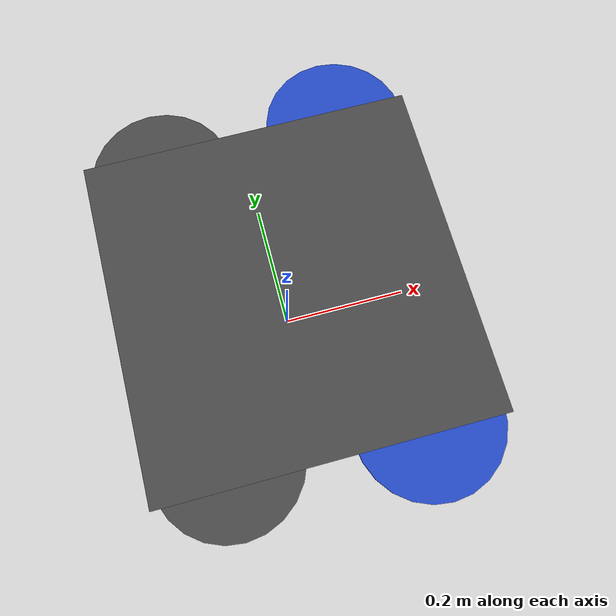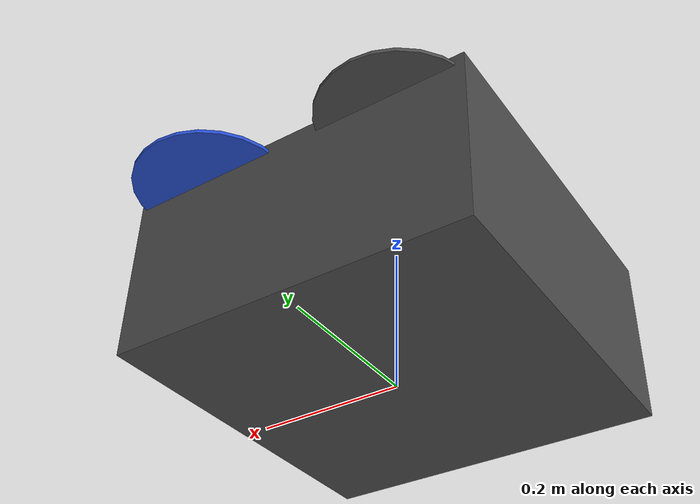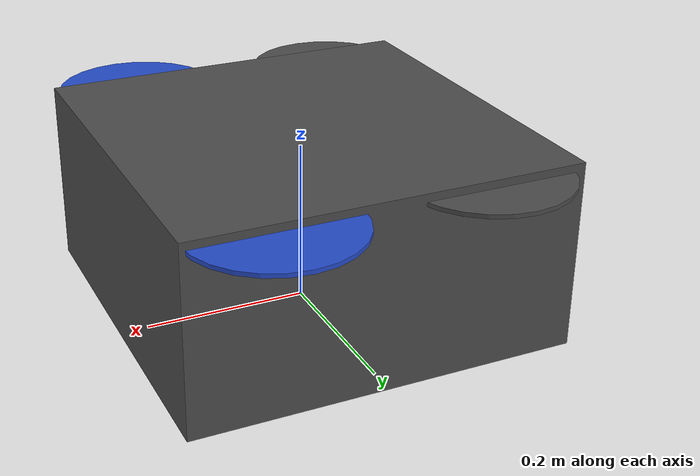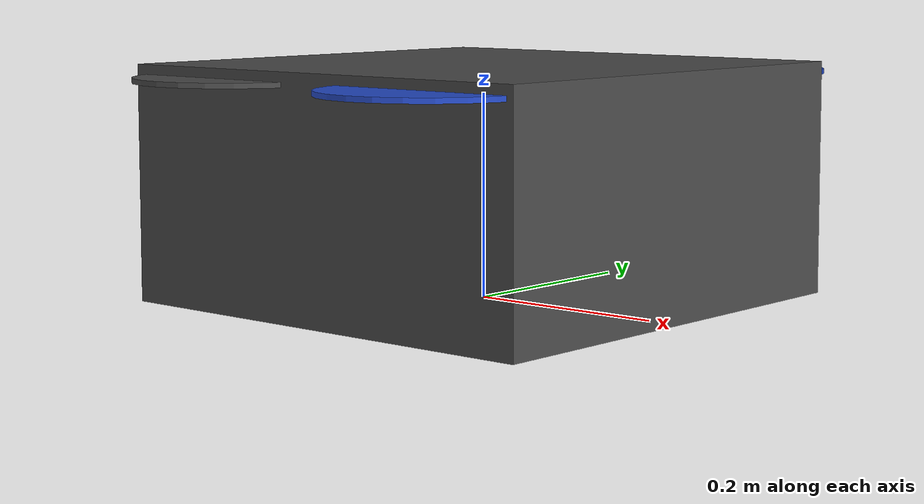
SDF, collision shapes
<?xml version='1.0'?>
<sdf version="1.6" >
  <model name="drone_with_depth_camera">
    <include>
      <uri>model://iris_base</uri>
    </include>

    <!-- testscript begin -->
    <link name="gimbal_small_2d_link">
      <pose>0 0 0.18 0 0 0</pose>

      <link name='base_link'>
        <inertial>
          <mass>0.2</mass>
          <inertia>
            <ixx>0.0001</ixx>
            <ixy>0</ixy>
            <ixz>0</ixz>
            <iyy>0.0001</iyy>
            <iyz>0</iyz>
            <izz>0.0001</izz>
          </inertia>
        </inertial>

        <visual name='base_main_viz'>
          <geometry>
            <mesh>
              <scale>0.001 0.001 0.001</scale>
              <uri>model://gimbal_small_2d/meshes/base_main.dae</uri>
            </mesh>
          </geometry>
          <material>
            <script>
              <uri>file://media/materials/scripts/gazebo.material</uri>
              <name>Gazebo/FlatBlack</name>
            </script>
          </material>
        </visual>

        <visual name='base_arm_viz'>
          <geometry>
            <mesh>
              <scale>0.001 0.001 0.001</scale>
              <uri>model://gimbal_small_2d/meshes/base_arm.dae</uri>
            </mesh>
          </geometry>
          <material>
            <script>
              <uri>file://media/materials/scripts/gazebo.material</uri>
              <name>Gazebo/FlatBlack</name>
            </script>
          </material>
        </visual>

        <collision name='base_col'>
          <pose>0.01 0.075 -0.025 0 0 0</pose>
          <geometry>
            <box>
              <size>0.1 0.05 0.15</size>
            </box>
          </geometry>
          <surface>
            <friction>
              <ode>
                <mu>1</mu>
                <mu2>1</mu2>
                <fdir1>0 0 0</fdir1>
                <slip1>0</slip1>
                <slip2>0</slip2>
              </ode>
            </friction>
          </surface>
        </collision>
      </link>

      <link name='tilt_link'>
        <inertial>
          <mass>0.01</mass>
          <inertia>
            <ixx>0.00001</ixx>
            <ixy>0</ixy>
            <ixz>0</ixz>
            <iyy>0.00001</iyy>
            <iyz>0</iyz>
            <izz>0.00001</izz>
          </inertia>
        </inertial>
        <visual name='tilt_viz'>
          <pose>0 0 -0.005 0 0 0</pose>
          <geometry>
            <mesh>
              <scale>0.001 0.001 0.001</scale>
              <uri>model://gimbal_small_2d/meshes/tilt.dae</uri>
            </mesh>
          </geometry>
          <material>
            <script>
              <uri>file://media/materials/scripts/gazebo.material</uri>
              <name>Gazebo/Grey</name>
            </script>
          </material>
        </visual>

        <collision name='tilt_col'>
          <pose>0 0 -0.005 0 0 0</pose>
          <geometry>
            <mesh>
              <scale>0.001 0.001 0.001</scale>
              <uri>model://gimbal_small_2d/meshes/tilt.dae</uri>
            </mesh>
          </geometry>
        </collision>

        <visual name='camera_viz'>
          <pose>0 0 0.02 0 0 0</pose>
          <geometry>
            <cylinder>
              <radius>0.025</radius>
              <length>0.050</length>
            </cylinder>
          </geometry>

          <material>
            <script>
              <uri>file://media/materials/scripts/gazebo.material</uri>
              <name>Gazebo/Grey</name>
            </script>
          </material>
        </visual>

        <collision name='camera_col'>
          <pose>0 0 0.02 0 0 0</pose>
          <geometry>
            <cylinder>
              <radius>0.025</radius>
              <length>0.050</length>
            </cylinder>
          </geometry>
        </collision>

        <sensor name="depth_camera" type="depth">
          <pose>0 0 0 -1.57 -1.57 0</pose>
          <update_rate>20</update_rate>
          <always_on>1</always_on>
          <visualize>true</visualize>
          <camera>
            <horizontal_fov>1.047198</horizontal_fov>
            <image>
              <width>640</width>
              <height>480</height>
              <format>R8G8B8</format>
            </image>
            <clip>
              <near>0.1</near>
              <far>20</far>
            </clip>
          </camera>
          <plugin name="depth_controller" filename="libgazebo_ros_openni_kinect.so">
            <baseline>0.2</baseline>
            <alwaysOn>true</alwaysOn>
            <updateRate>10.0</updateRate>
            <cameraName>depth_camera</cameraName>
            <imageTopicName>/camera/rgb/image_raw</imageTopicName>
            <cameraInfoTopicName>/depth_cameracamera/color/camera_info</cameraInfoTopicName>
            <depthImageTopicName>/depth_camera/depth/image_raw</depthImageTopicName>
            <depthImageInfoTopicName>/depth_camera/camera/depth/camera_info</depthImageInfoTopicName>
            <pointCloudTopicName>depth/points</pointCloudTopicName>
            <frameName>camera_link_optical</frameName>
            <pointCloudCutoff>0.4</pointCloudCutoff>
            <pointCloudCutoffMax>10.0</pointCloudCutoffMax>
            <distortionK1>0.0</distortionK1>
            <distortionK2>0.0</distortionK2>
            <distortionK3>0.0</distortionK3>
            <distortionT1>0.0</distortionT1>
            <distortionT2>0.0</distortionT2>
            <CxPrime>0</CxPrime>
            <Cx>0</Cx>
            <Cy>0</Cy>
            <focalLength>0.0</focalLength>
            <focalLength>0</focalLength>
            <hackBaseline>0</hackBaseline>
          </plugin>

        </sensor>
      </link>

      <joint name='tilt_joint' type='revolute'>
        <parent>base_link</parent>
        <child>tilt_link</child>

        <physics>
          <ode>
            <implicit_spring_damper>1</implicit_spring_damper>
          </ode>
        </physics>

        <axis>
          <xyz>1 0 0</xyz>
          <dynamics>
            <damping>0.5</damping>
          </dynamics>
          <use_parent_model_frame>1</use_parent_model_frame>
          <limit>
            <lower>-0.1</lower>
            <upper>3.14159265</upper>
            <effort>10</effort>
            <velocity>-1</velocity>
          </limit>
        </axis>
        <pose>0 0 0.02 0 0 0</pose>
      </joint>

      <plugin name="gimbal_small_2d" filename="libGimbalSmall2dPlugin.so">
        <joint>tilt_joint</joint>
      </plugin>
    </link>

    <!-- testscript end -->

 <!--  RGBD camera link   -->
  <joint name="iris_gimbal_mount" type="revolute">
      <parent>iris::base_link</parent>
      <child>gimbal_small_2d_link::base_link</child>
      <axis>
        <limit>
          <lower>0</lower>
          <upper>0</upper>
        </limit>
        <xyz>0 0 1</xyz>
        <use_parent_model_frame>true</use_parent_model_frame>
      </axis>
    </joint>

    <!-- plugins -->
    <plugin name="rotor_0_blade_1" filename="libLiftDragPlugin.so">
      <a0>0.3</a0>
      <alpha_stall>1.4</alpha_stall>
      <cla>4.2500</cla>
      <cda>0.10</cda>
      <cma>0.00</cma>
      <cla_stall>-0.025</cla_stall>
      <cda_stall>0.0</cda_stall>
      <cma_stall>0.0</cma_stall>
      <area>0.002</area>
      <air_density>1.2041</air_density>
      <cp>0.084 0 0</cp>
      <forward>0 1 0</forward>
      <upward>0 0 1</upward>
      <link_name>iris::rotor_0</link_name>
    </plugin>
    <plugin name="rotor_0_blade_2" filename="libLiftDragPlugin.so">
      <a0>0.3</a0>
      <alpha_stall>1.4</alpha_stall>
      <cla>4.2500</cla>
      <cda>0.10</cda>
      <cma>0.00</cma>
      <cla_stall>-0.025</cla_stall>
      <cda_stall>0.0</cda_stall>
      <cma_stall>0.0</cma_stall>
      <area>0.002</area>
      <air_density>1.2041</air_density>
      <cp>-0.084 0 0</cp>
      <forward>0 -1 0</forward>
      <upward>0 0 1</upward>
      <link_name>iris::rotor_0</link_name>
    </plugin>

    <plugin name="rotor_1_blade_1" filename="libLiftDragPlugin.so">
      <a0>0.3</a0>
      <alpha_stall>1.4</alpha_stall>
      <cla>4.2500</cla>
      <cda>0.10</cda>
      <cma>0.00</cma>
      <cla_stall>-0.025</cla_stall>
      <cda_stall>0.0</cda_stall>
      <cma_stall>0.0</cma_stall>
      <area>0.002</area>
      <air_density>1.2041</air_density>
      <cp>0.084 0 0</cp>
      <forward>0 1 0</forward>
      <upward>0 0 1</upward>
      <link_name>iris::rotor_1</link_name>
    </plugin>
    <plugin name="rotor_1_blade_2" filename="libLiftDragPlugin.so">
      <a0>0.3</a0>
      <alpha_stall>1.4</alpha_stall>
      <cla>4.2500</cla>
      <cda>0.10</cda>
      <cma>0.00</cma>
      <cla_stall>-0.025</cla_stall>
      <cda_stall>0.0</cda_stall>
      <cma_stall>0.0</cma_stall>
      <area>0.002</area>
      <air_density>1.2041</air_density>
      <cp>-0.084 0 0</cp>
      <forward>0 -1 0</forward>
      <upward>0 0 1</upward>
      <link_name>iris::rotor_1</link_name>
    </plugin>

    <plugin name="rotor_2_blade_1" filename="libLiftDragPlugin.so">
      <a0>0.3</a0>
      <alpha_stall>1.4</alpha_stall>
      <cla>4.2500</cla>
      <cda>0.10</cda>
      <cma>0.00</cma>
      <cla_stall>-0.025</cla_stall>
      <cda_stall>0.0</cda_stall>
      <cma_stall>0.0</cma_stall>
      <area>0.002</area>
      <air_density>1.2041</air_density>
      <cp>0.084 0 0</cp>
      <forward>0 -1 0</forward>
      <upward>0 0 1</upward>
      <link_name>iris::rotor_2</link_name>
    </plugin>
    <plugin name="rotor_2_blade_2" filename="libLiftDragPlugin.so">
      <a0>0.3</a0>
      <alpha_stall>1.4</alpha_stall>
      <cla>4.2500</cla>
      <cda>0.10</cda>
      <cma>0.00</cma>
      <cla_stall>-0.025</cla_stall>
      <cda_stall>0.0</cda_stall>
      <cma_stall>0.0</cma_stall>
      <area>0.002</area>
      <air_density>1.2041</air_density>
      <cp>-0.084 0 0</cp>
      <forward>0 1 0</forward>
      <upward>0 0 1</upward>
      <link_name>iris::rotor_2</link_name>
    </plugin>

    <plugin name="rotor_3_blade_1" filename="libLiftDragPlugin.so">
      <a0>0.3</a0>
      <alpha_stall>1.4</alpha_stall>
      <cla>4.2500</cla>
      <cda>0.10</cda>
      <cma>0.00</cma>
      <cla_stall>-0.025</cla_stall>
      <cda_stall>0.0</cda_stall>
      <cma_stall>0.0</cma_stall>
      <area>0.002</area>
      <air_density>1.2041</air_density>
      <cp>0.084 0 0</cp>
      <forward>0 -1 0</forward>
      <upward>0 0 1</upward>
      <link_name>iris::rotor_3</link_name>
    </plugin>
    <plugin name="rotor_3_blade_2" filename="libLiftDragPlugin.so">
      <a0>0.3</a0>
      <alpha_stall>1.4</alpha_stall>
      <cla>4.2500</cla>
      <cda>0.10</cda>
      <cma>0.00</cma>
      <cla_stall>-0.025</cla_stall>
      <cda_stall>0.0</cda_stall>
      <cma_stall>0.0</cma_stall>
      <area>0.002</area>
      <air_density>1.2041</air_density>
      <cp>-0.084 0 0</cp>
      <forward>0 1 0</forward>
      <upward>0 0 1</upward>
      <link_name>iris::rotor_3</link_name>
    </plugin>
    <plugin name="arducopter_plugin" filename="libArduPilotPlugin.so">
      <fdm_addr>127.0.0.1</fdm_addr>
      <fdm_port_in>9002</fdm_port_in>
      <fdm_port_out>9003</fdm_port_out>
      <!--
          Require by APM :
          Only change model and gazebo from XYZ to XY-Z coordinates
      -->
      <modelXYZToAirplaneXForwardZDown>0 0 0 3.141593 0 0</modelXYZToAirplaneXForwardZDown>
      <gazeboXYZToNED>0 0 0 3.141593 0 0</gazeboXYZToNED>
      <imuName>iris::iris/imu_link::imu_sensor</imuName>
      <connectionTimeoutMaxCount>5</connectionTimeoutMaxCount>
      <control channel="0">
      <!--
          incoming control command [0, 1]
          so offset it by 0 to get [0, 1]
          and divide max target by 1.
          offset = 0
          multiplier = 838 max rpm / 1 = 838
        -->
        <type>VELOCITY</type>
        <offset>0</offset>
        <p_gain>0.20</p_gain>
        <i_gain>0</i_gain>
        <d_gain>0</d_gain>
        <i_max>0</i_max>
        <i_min>0</i_min>
        <cmd_max>2.5</cmd_max>
        <cmd_min>-2.5</cmd_min>
        <jointName>iris::rotor_0_joint</jointName>
        <multiplier>838</multiplier>
        <controlVelocitySlowdownSim>1</controlVelocitySlowdownSim>
      </control>
      <control channel="1">
        <type>VELOCITY</type>
        <offset>0</offset>
        <p_gain>0.20</p_gain>
        <i_gain>0</i_gain>
        <d_gain>0</d_gain>
        <i_max>0</i_max>
        <i_min>0</i_min>
        <cmd_max>2.5</cmd_max>
        <cmd_min>-2.5</cmd_min>
        <jointName>iris::rotor_1_joint</jointName>
        <multiplier>838</multiplier>
        <controlVelocitySlowdownSim>1</controlVelocitySlowdownSim>
      </control>
      <control channel="2">
        <type>VELOCITY</type>
        <offset>0</offset>
        <p_gain>0.20</p_gain>
        <i_gain>0</i_gain>
        <d_gain>0</d_gain>
        <i_max>0</i_max>
        <i_min>0</i_min>
        <cmd_max>2.5</cmd_max>
        <cmd_min>-2.5</cmd_min>
        <jointName>iris::rotor_2_joint</jointName>
        <multiplier>-838</multiplier>
        <controlVelocitySlowdownSim>1</controlVelocitySlowdownSim>
      </control>
      <control channel="3">
        <type>VELOCITY</type>
        <offset>0</offset>
        <p_gain>0.20</p_gain>
        <i_gain>0</i_gain>
        <d_gain>0</d_gain>
        <i_max>0</i_max>
        <i_min>0</i_min>
        <cmd_max>2.5</cmd_max>
        <cmd_min>-2.5</cmd_min>
        <jointName>iris::rotor_3_joint</jointName>
        <multiplier>-838</multiplier>
        <controlVelocitySlowdownSim>1</controlVelocitySlowdownSim>
      </control>
    </plugin>

  </model>
</sdf>

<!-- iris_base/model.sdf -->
<sdf version='1.6'>
  <model name='iris'>
    <pose>0 0 0.194923 0 0 0</pose>
    <link name='base_link'>
      <velocity_decay>
        <linear>0.0</linear>
        <angular>0.0</angular>
      </velocity_decay>
      <inertial>
        <pose>0 0 0 0 0 0</pose>
        <mass>1.5</mass>
        <inertia>
          <ixx>0.008</ixx>
          <ixy>0</ixy>
          <ixz>0</ixz>
          <iyy>0.015</iyy>
          <iyz>0</iyz>
          <izz>0.017</izz>
        </inertia>
      </inertial>
      <collision name='base_link_collision'>
        <pose>0 0 -0.08 0 0 0</pose>
        <geometry>
          <box>
            <size>0.47 0.47 0.23</size>
          </box>
        </geometry>
        <surface>
          <contact>
            <ode>
              <max_vel>100.0</max_vel>
              <min_depth>0.001</min_depth>
            </ode>
          </contact>
          <friction>
            <ode>
              <mu>1.0</mu>
              <mu2>1.0</mu2>
            </ode>
          </friction>
        </surface>
      </collision>
      <visual name='base_link_visual'>
        <geometry>
          <mesh>
            <uri>model://iris_base/meshes/iris.dae</uri>
          </mesh>
        </geometry>
        <material>
          <script>
            <name>Gazebo/DarkGrey</name>
          </script>
        </material>
      </visual>

      <visual name='front_left_leg_visual'>
        <pose>0.123 0.22 -0.11 0 0 0</pose>
        <geometry>
          <cylinder>
            <radius>0.005</radius>
            <length>0.17</length>
          </cylinder>
        </geometry>
        <material>
          <script>
            <name>Gazebo/FlatBlack</name>
            <uri>file://media/materials/scripts/gazebo.material</uri>
          </script>
        </material>
      </visual>
      <visual name='front_right_leg_visual'>
        <pose>0.123 -0.22 -0.11 0 0 0</pose>
        <geometry>
          <cylinder>
            <radius>0.005</radius>
            <length>0.17</length>
          </cylinder>
        </geometry>
        <material>
          <script>
            <name>Gazebo/FlatBlack</name>
            <uri>file://media/materials/scripts/gazebo.material</uri>
          </script>
        </material>
      </visual>
      <visual name='rear_left_leg_visual'>
        <pose>-0.140 0.21 -0.11 0 0 0</pose>
        <geometry>
          <cylinder>
            <radius>0.005</radius>
            <length>0.17</length>
          </cylinder>
        </geometry>
        <material>
          <script>
            <name>Gazebo/FlatBlack</name>
            <uri>file://media/materials/scripts/gazebo.material</uri>
          </script>
        </material>
      </visual>
      <visual name='rear_right_leg_visual'>
        <pose>-0.140 -0.21 -0.11 0 0 0</pose>
        <geometry>
          <cylinder>
            <radius>0.005</radius>
            <length>0.17</length>
          </cylinder>
        </geometry>
        <material>
          <script>
            <name>Gazebo/FlatBlack</name>
            <uri>file://media/materials/scripts/gazebo.material</uri>
          </script>
        </material>
      </visual>
    </link>
    <link name='iris/ground_truth/odometry_sensorgt_link'>
      <pose>0 0 0 0 -0 0</pose>
      <inertial>
        <pose>0 0 0 0 -0 0</pose>
        <mass>0.15</mass>
        <inertia>
          <ixx>0.0001</ixx>
          <ixy>0</ixy>
          <ixz>0</ixz>
          <iyy>0.0002</iyy>
          <iyz>0</iyz>
          <izz>0.0002</izz>
        </inertia>
      </inertial>
    </link>
    <joint name='iris/ground_truth/odometry_sensorgt_joint' type='revolute'>
      <child>iris/ground_truth/odometry_sensorgt_link</child>
      <parent>base_link</parent>
      <axis>
        <xyz>0 0 1</xyz>
        <limit>
          <lower>0</lower>
          <upper>0</upper>
          <effort>0</effort>
          <velocity>0</velocity>
        </limit>
        <dynamics>
          <damping>1.0</damping>
        </dynamics>
        <use_parent_model_frame>1</use_parent_model_frame>
      </axis>
      <physics>
        <ode>
          <implicit_spring_damper>1</implicit_spring_damper>
        </ode>
      </physics>
    </joint>
    <link name='iris/imu_link'>
      <inertial>
        <pose>0 0 0 0 0 0</pose>
        <mass>0.15</mass>
        <inertia>
          <ixx>0.00001</ixx>
          <ixy>0</ixy>
          <ixz>0</ixz>
          <iyy>0.00002</iyy>
          <iyz>0</iyz>
          <izz>0.00002</izz>
        </inertia>
      </inertial>
      <sensor name="imu_sensor" type="imu">
        <pose>0 0 0 3.141593 0 0</pose>
        <always_on>1</always_on>
        <update_rate>1000.0</update_rate>
      </sensor>
    </link>
    <joint name='iris/imu_joint' type='revolute'>
      <child>iris/imu_link</child>
      <parent>base_link</parent>
      <axis>
        <xyz>0 0 1</xyz>
        <limit>
          <lower>0</lower>
          <upper>0</upper>
          <effort>0</effort>
          <velocity>0</velocity>
        </limit>
        <dynamics>
          <damping>1.0</damping>
        </dynamics>
        <use_parent_model_frame>1</use_parent_model_frame>
      </axis>
      <physics>
        <ode>
          <implicit_spring_damper>1</implicit_spring_damper>
        </ode>
      </physics>
    </joint>
#
    <link name='rotor_0'>
      <pose>0.13 -0.22 0.023 0 -0 0</pose>
      <inertial>
        <pose>0 0 0 0 -0 0</pose>
        <mass>0.025</mass>
        <inertia>
          <ixx>9.75e-06</ixx>
          <ixy>0</ixy>
          <ixz>0</ixz>
          <iyy>0.000166704</iyy>
          <iyz>0</iyz>
          <izz>0.000167604</izz>
        </inertia>
      </inertial>
      <collision name='rotor_0_collision'>
        <pose>0 0 0 0 -0 0</pose>
        <geometry>
          <cylinder>
            <length>0.005</length>
            <radius>0.1</radius>
          </cylinder>
        </geometry>
        <surface>
          <contact>
            <ode/>
          </contact>
          <friction>
            <ode/>
          </friction>
        </surface>
      </collision>
      <visual name='rotor_0_visual'>
        <pose>0 0 0 0 -0 0</pose>
        <geometry>
          <mesh>
            <scale>1 1 1</scale>
            <uri>model://iris_base/meshes/iris_prop_ccw.dae</uri>
          </mesh>
        </geometry>
        <material>
          <script>
            <name>Gazebo/Blue</name>
            <uri>__default__</uri>
          </script>
        </material>
      </visual>
      <gravity>1</gravity>
      <velocity_decay/>
      <self_collide>0</self_collide>
    </link>
    <joint name='rotor_0_joint' type='revolute'>
      <child>rotor_0</child>
      <parent>base_link</parent>
      <axis>
        <xyz>0 0 1</xyz>
        <limit>
          <lower>-1e+16</lower>
          <upper>1e+16</upper>
        </limit>
        <dynamics>
          <damping>0.004</damping>
        </dynamics>
        <use_parent_model_frame>1</use_parent_model_frame>
      </axis>
      <physics>
        <ode>
          <implicit_spring_damper>1</implicit_spring_damper>
        </ode>
      </physics>
    </joint>
    <link name='rotor_1'>
      <pose>-0.13 0.2 0.023 0 -0 0</pose>
      <inertial>
        <pose>0 0 0 0 -0 0</pose>
        <mass>0.025</mass>
        <inertia>
          <ixx>9.75e-06</ixx>
          <ixy>0</ixy>
          <ixz>0</ixz>
          <iyy>0.000166704</iyy>
          <iyz>0</iyz>
          <izz>0.000167604</izz>
        </inertia>
      </inertial>
      <collision name='rotor_1_collision'>
        <pose>0 0 0 0 -0 0</pose>
        <geometry>
          <cylinder>
            <length>0.005</length>
            <radius>0.1</radius>
          </cylinder>
        </geometry>
        <surface>
          <contact>
            <ode/>
          </contact>
          <friction>
            <ode/>
          </friction>
        </surface>
      </collision>
      <visual name='rotor_1_visual'>
        <pose>0 0 0 0 -0 0</pose>
        <geometry>
          <mesh>
            <scale>1 1 1</scale>
            <uri>model://iris_base/meshes/iris_prop_ccw.dae</uri>
          </mesh>
        </geometry>
        <material>
          <script>
            <name>Gazebo/DarkGrey</name>
            <uri>__default__</uri>
          </script>
        </material>
      </visual>
      <gravity>1</gravity>
      <velocity_decay/>
      <self_collide>0</self_collide>
    </link>
    <joint name='rotor_1_joint' type='revolute'>
      <child>rotor_1</child>
      <parent>base_link</parent>
      <axis>
        <xyz>0 0 1</xyz>
        <limit>
          <lower>-1e+16</lower>
          <upper>1e+16</upper>
        </limit>
        <dynamics>
          <damping>0.004</damping>
        </dynamics>
        <use_parent_model_frame>1</use_parent_model_frame>
      </axis>
      <physics>
        <ode>
          <implicit_spring_damper>1</implicit_spring_damper>
        </ode>
      </physics>
    </joint>
    <link name='rotor_2'>
      <pose>0.13 0.22 0.023 0 -0 0</pose>
      <inertial>
        <pose>0 0 0 0 -0 0</pose>
        <mass>0.025</mass>
        <inertia>
          <ixx>9.75e-06</ixx>
          <ixy>0</ixy>
          <ixz>0</ixz>
          <iyy>0.000166704</iyy>
          <iyz>0</iyz>
          <izz>0.000167604</izz>
        </inertia>
      </inertial>
      <collision name='rotor_2_collision'>
        <pose>0 0 0 0 -0 0</pose>
        <geometry>
          <cylinder>
            <length>0.005</length>
            <radius>0.1</radius>
          </cylinder>
        </geometry>
        <surface>
          <contact>
            <ode/>
          </contact>
          <friction>
            <ode/>
          </friction>
        </surface>
      </collision>
      <visual name='rotor_2_visual'>
        <pose>0 0 0 0 -0 0</pose>
        <geometry>
          <mesh>
            <scale>1 1 1</scale>
            <uri>model://iris_base/meshes/iris_prop_cw.dae</uri>
          </mesh>
        </geometry>
        <material>
          <script>
            <name>Gazebo/Blue</name>
            <uri>__default__</uri>
          </script>
        </material>
      </visual>
      <gravity>1</gravity>
      <velocity_decay/>
      <self_collide>0</self_collide>
    </link>
    <joint name='rotor_2_joint' type='revolute'>
      <child>rotor_2</child>
      <parent>base_link</parent>
      <axis>
        <xyz>0 0 1</xyz>
        <limit>
          <lower>-1e+16</lower>
          <upper>1e+16</upper>
        </limit>
        <dynamics>
          <damping>0.004</damping>
        </dynamics>
        <use_parent_model_frame>1</use_parent_model_frame>
      </axis>
      <physics>
        <ode>
          <implicit_spring_damper>1</implicit_spring_damper>
        </ode>
      </physics>
    </joint>
    <link name='rotor_3'>
      <pose>-0.13 -0.2 0.023 0 -0 0</pose>
      <inertial>
        <pose>0 0 0 0 -0 0</pose>
        <mass>0.025</mass>
        <inertia>
          <ixx>9.75e-06</ixx>
          <ixy>0</ixy>
          <ixz>0</ixz>
          <iyy>0.000166704</iyy>
          <iyz>0</iyz>
          <izz>0.000167604</izz>
        </inertia>
      </inertial>
      <collision name='rotor_3_collision'>
        <pose>0 0 0 0 -0 0</pose>
        <geometry>
          <cylinder>
            <length>0.005</length>
            <radius>0.1</radius>
          </cylinder>
        </geometry>
        <surface>
          <contact>
            <ode/>
          </contact>
          <friction>
            <ode/>
          </friction>
        </surface>
      </collision>
      <visual name='rotor_3_visual'>
        <pose>0 0 0 0 -0 0</pose>
        <geometry>
          <mesh>
            <scale>1 1 1</scale>
            <uri>model://iris_base/meshes/iris_prop_cw.dae</uri>
          </mesh>
        </geometry>
        <material>
          <script>
            <name>Gazebo/DarkGrey</name>
            <uri>__default__</uri>
          </script>
        </material>
      </visual>
      <gravity>1</gravity>
      <velocity_decay/>
      <self_collide>0</self_collide>
    </link>
    <joint name='rotor_3_joint' type='revolute'>
      <child>rotor_3</child>
      <parent>base_link</parent>
      <axis>
        <xyz>0 0 1</xyz>
        <limit>
          <lower>-1e+16</lower>
          <upper>1e+16</upper>
        </limit>
        <dynamics>
          <damping>0.004</damping>
        </dynamics>
        <use_parent_model_frame>1</use_parent_model_frame>
      </axis>
      <physics>
        <ode>
          <implicit_spring_damper>1</implicit_spring_damper>
        </ode>
      </physics>
    </joint>
    <static>0</static>
  </model>
</sdf>
